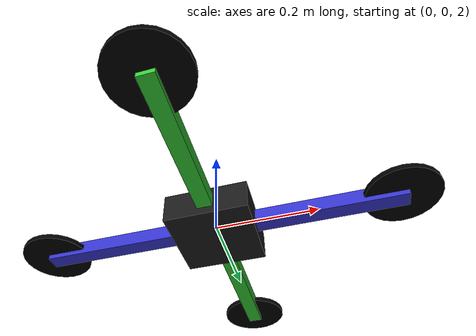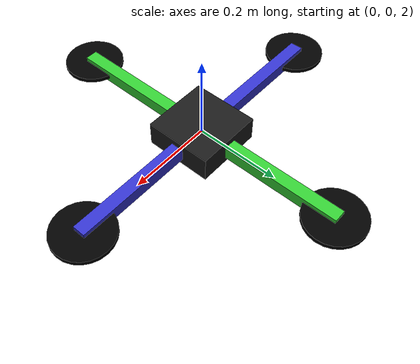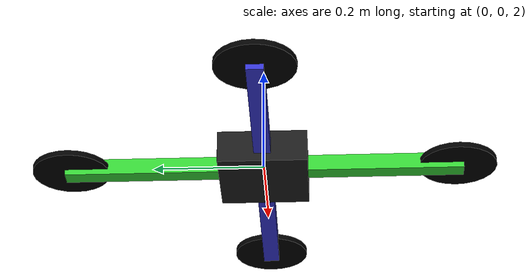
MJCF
<mujoco model="quadrotor_playback">
  <compiler angle="radian"/>

  <option timestep="0.02"/>

  <worldbody>
    <geom name="floor" size="10 10 0.1" type="plane" rgba="0.8 0.8 0.8 1"/>
    <geom name="ceiling" size="10 10 0.01" pos="0 0 3" type="plane" rgba="1 0 0 0.15"/>
    <body name="quadrotor" pos="0 0 2">
      <joint name="root" type="free"/>
      <geom size="0.08 0.08 0.03" type="box" rgba="0.1 0.1 0.1 1"/>
      <geom size="0.18 0.015 0.015" pos="0.18 0 0" type="box" rgba="0.2 0.2 0.8 1"/>
      <geom size="0.18 0.015 0.015" pos="-0.18 0 0" type="box" rgba="0.2 0.2 0.8 1"/>
      <geom size="0.015 0.18 0.015" pos="0 0.18 0" type="box" rgba="0.2 0.8 0.2 1"/>
      <geom size="0.015 0.18 0.015" pos="0 -0.18 0" type="box" rgba="0.2 0.8 0.2 1"/>
      <geom size="0.07 0.005" pos="0.35 0 0" type="cylinder" rgba="0 0 0 1"/>
      <geom size="0.07 0.005" pos="-0.35 0 0" type="cylinder" rgba="0 0 0 1"/>
      <geom size="0.07 0.005" pos="0 0.35 0" type="cylinder" rgba="0 0 0 1"/>
      <geom size="0.07 0.005" pos="0 -0.35 0" type="cylinder" rgba="0 0 0 1"/>
    </body>
  </worldbody>
</mujoco>
